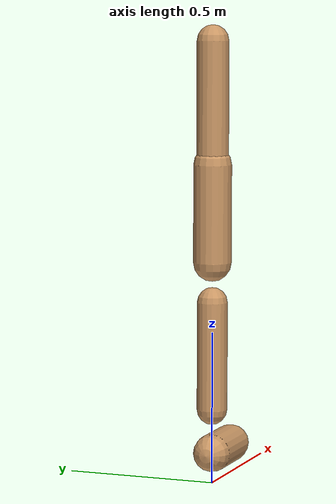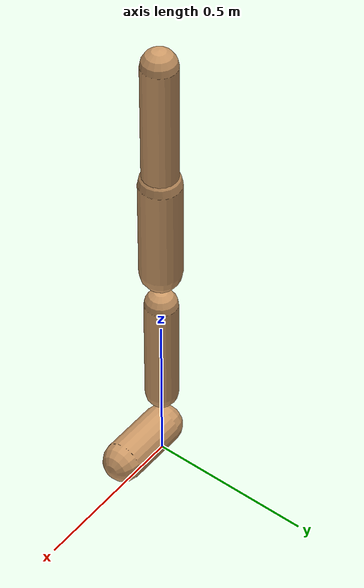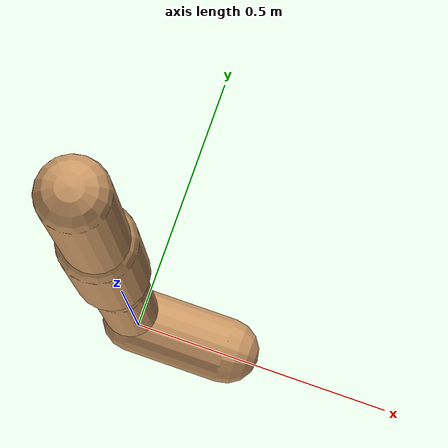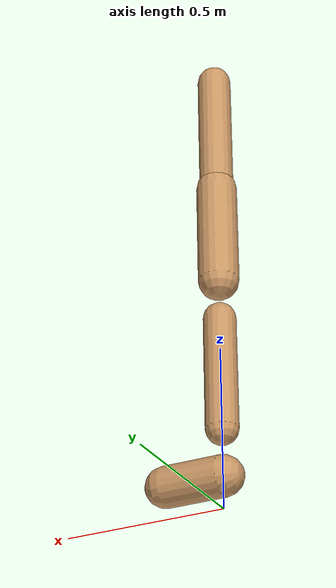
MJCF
<mujoco model="walker2d">
  <compiler angle="degree" coordinate="global" inertiafromgeom="true" />
  <default>
    <joint armature="0.01" damping=".1" limited="true" />
    <geom conaffinity="0" condim="3" contype="1" density="1000" friction="0.8 .1 .1" rgba="0.8 0.6 .4 1" />
  </default>
  <option integrator="RK4" timestep="0.002" />
  <worldbody>

    <body name="torso" pos="0 0 -0.2771485677127247">
      <joint armature="0" axis="1 0 0" damping="0" limited="false" name="ignorex" pos="0 0 0" stiffness="0" type="slide" />
      <joint armature="0" axis="0 0 1" damping="0" limited="false" name="ignorez" pos="0 0 0" ref="1.25" stiffness="0" type="slide" />
      <joint armature="0" axis="0 1 0" damping="0" limited="false" name="ignorey" pos="0 0 0" stiffness="0" type="hinge" />
      <geom fromto="0 0 1.45 0 0 1.05" name="torso_geom" size="0.05196707321282254" type="capsule" />
      <body name="thigh">
        <joint axis="0 -1 0" name="thigh_joint" pos="0 0 1.05" range="-150 0" type="hinge" />
        <geom fromto="0.0 0.0 1.05 0.0 0.0 0.7312809004955012" name="thigh_geom" size="0.062157604900765655" type="capsule" />
        <body name="leg" pos="0.0 0.0 0.13128090049550123">
          <joint axis="0 -1 0" name="leg_joint" pos="0 0 0.6" range="-150 0" type="hinge" />
          <geom fromto="0.0 0.0 0.6 0.0 0.0 0.24586766721722353" name="leg_geom" size="0.04972608392061252" type="capsule" />
          <body name="foot" pos="0.0 0.0 0.14586766721722352">
            <joint axis="0 -1 0" name="foot_joint" pos="0 0 0.1" range="-45 45" type="hinge" />
            <geom fromto="0.0 0.0 0.1 0.18098438587223675 0.0 0.1" name="foot_geom" size="0.061580676457419825" type="capsule" />
          </body>
        </body>
      </body>

      <body name="thigh_left">
        <joint axis="0 -1 0" name="thigh_left_joint" pos="0 0 1.05" range="-150 0" type="hinge" />
        <geom fromto="0.0 0.0 1.05 0.0 0.0 0.7312809004955012" name="thigh_left_geom" rgba=".7 .3 .6 1" size="0.062157604900765655" type="capsule" />
        <body name="leg_left" pos="0.0 0.0 0.13128090049550123">
          <joint axis="0 -1 0" name="leg_left_joint" pos="0 0 0.6" range="-150 0" type="hinge" />
          <geom fromto="0.0 0.0 0.6 0.0 0.0 0.24586766721722353" name="leg_left_geom" rgba=".7 .3 .6 1" size="0.04972608392061252" type="capsule" />
          <body name="foot_left" pos="0.0 0.0 0.14586766721722352">
            <joint axis="0 -1 0" name="foot_left_joint" pos="0 0 0.1" range="-45 45" type="hinge" />
            <geom fromto="0.0 0.0 0.1 0.18098438587223675 0.0 0.1" name="foot_left_geom" rgba=".7 .3 .6 1" size="0.061580676457419825" type="capsule" />
          </body>
        </body>
      </body>
    </body>
  </worldbody>
  <actuator>

    <motor ctrllimited="true" ctrlrange="-1.0 1.0" gear="100" joint="thigh_joint" />
    <motor ctrllimited="true" ctrlrange="-1.0 1.0" gear="100" joint="leg_joint" />
    <motor ctrllimited="true" ctrlrange="-1.0 1.0" gear="100" joint="foot_joint" />
    <motor ctrllimited="true" ctrlrange="-1.0 1.0" gear="100" joint="thigh_left_joint" />
    <motor ctrllimited="true" ctrlrange="-1.0 1.0" gear="100" joint="leg_left_joint" />
    <motor ctrllimited="true" ctrlrange="-1.0 1.0" gear="100" joint="foot_left_joint" />

  </actuator>
</mujoco>
